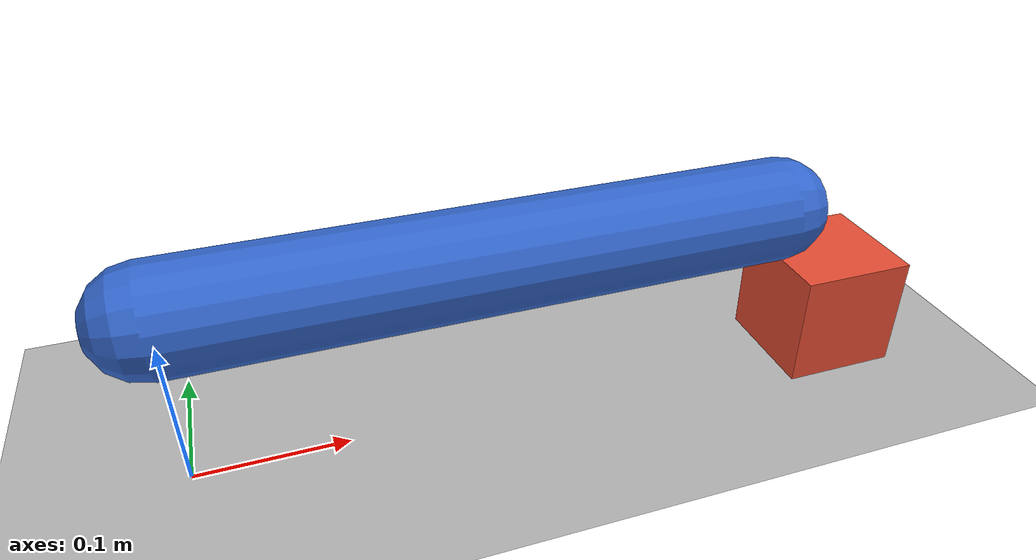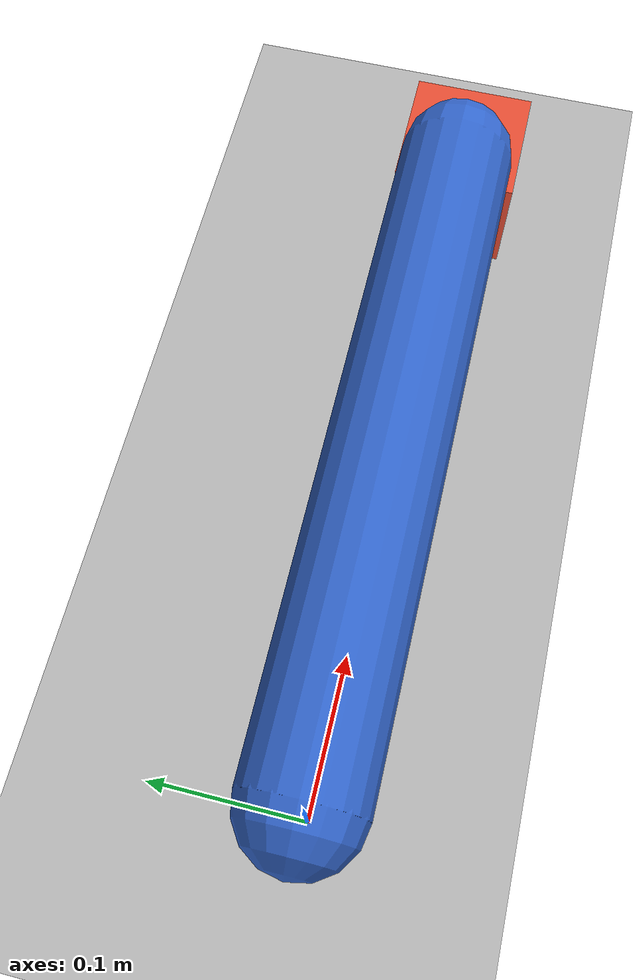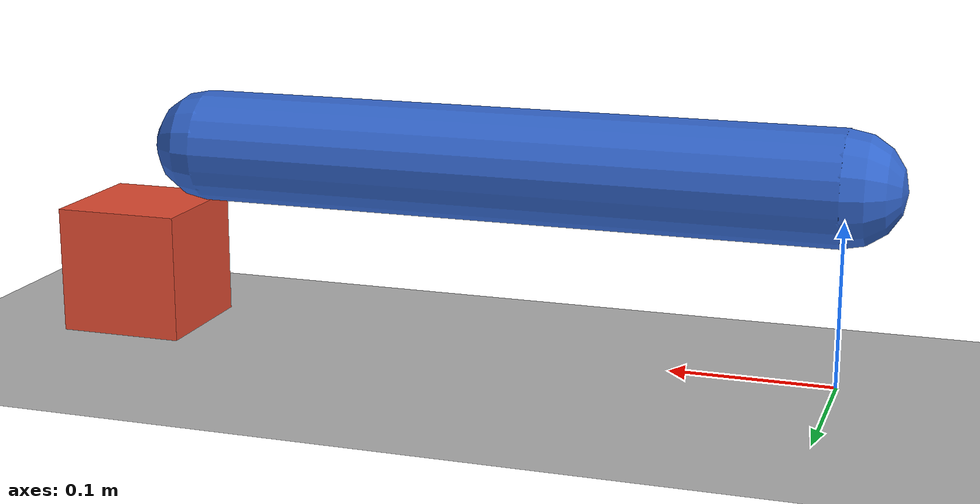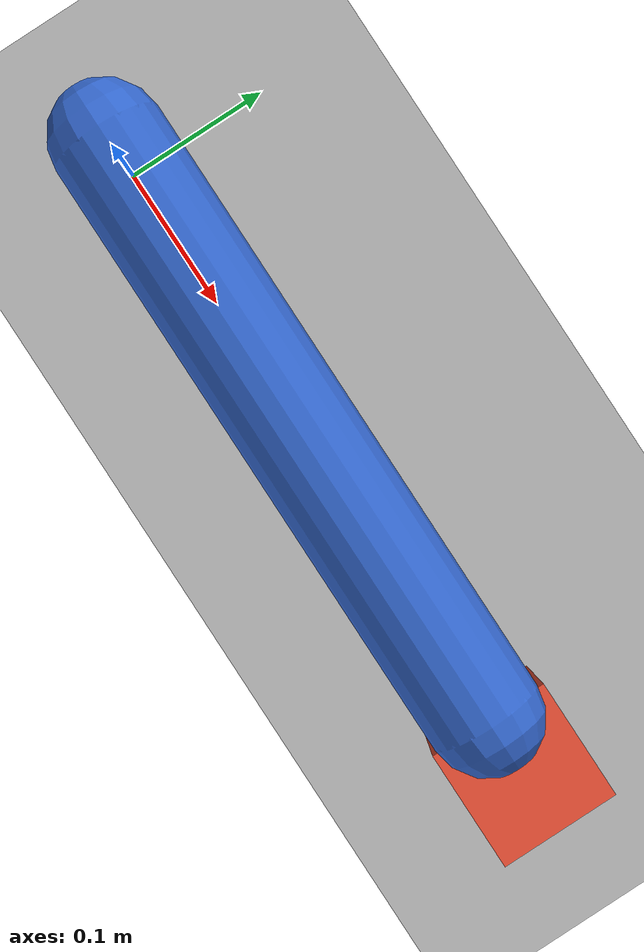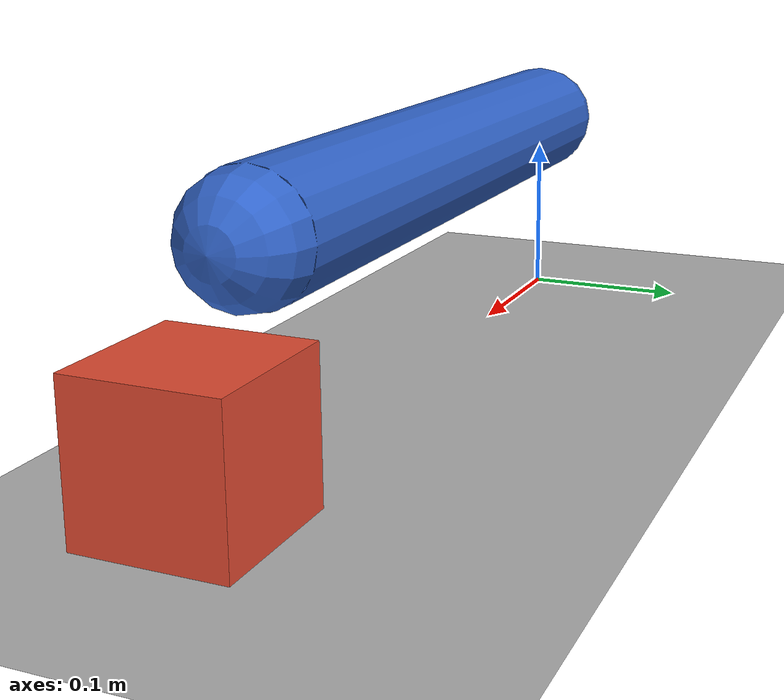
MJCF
<mujoco model="phiagent_tabletop_hinge">
  <option timestep="0.002" gravity="0 0 -9.81"/>
  <visual>
    <global azimuth="135" elevation="-20"/>
  </visual>
  <worldbody>
    <light pos="0 0 2" dir="0 0 -1"/>
    <geom name="table" type="plane" size="1 1 0.05" rgba="0.7 0.7 0.7 1"/>
    <body name="arm" pos="0 0 0.12">
      <joint name="joint1" type="hinge" axis="0 0 1" range="-90 90"/>
      <geom name="arm_link" type="capsule" fromto="0 0 0 0.4 0 0"
            size="0.035" mass="1" rgba="0.2 0.4 0.8 1"/>
    </body>
    <body name="object" pos="0.45 0 0.04">
      <freejoint/>
      <geom name="object_geom" type="box" size="0.04 0.04 0.04"
            mass="0.2" rgba="0.9 0.3 0.2 1"/>
    </body>
  </worldbody>
  <actuator>
    <position name="joint1_position" joint="joint1" kp="80"/>
  </actuator>
</mujoco>
